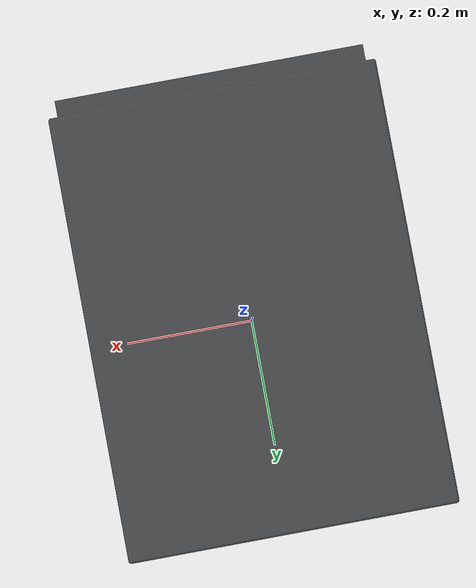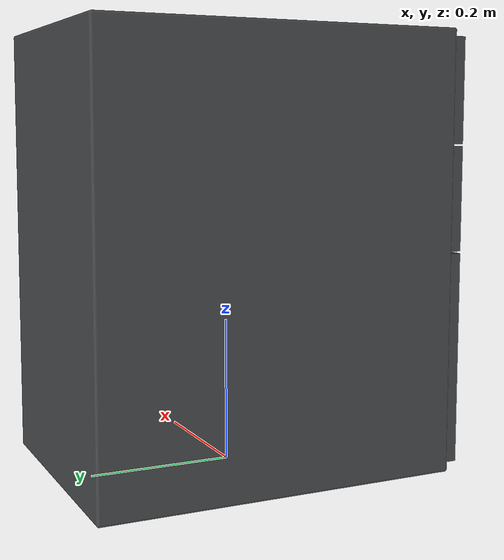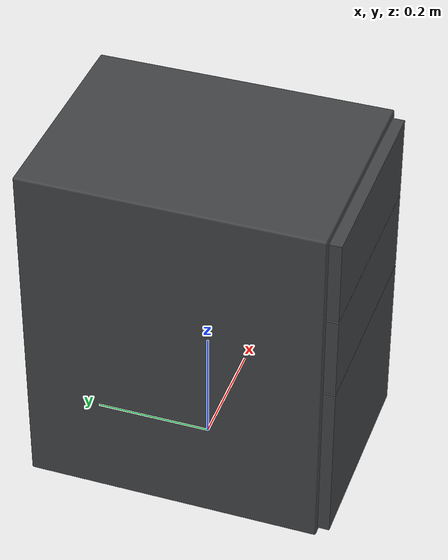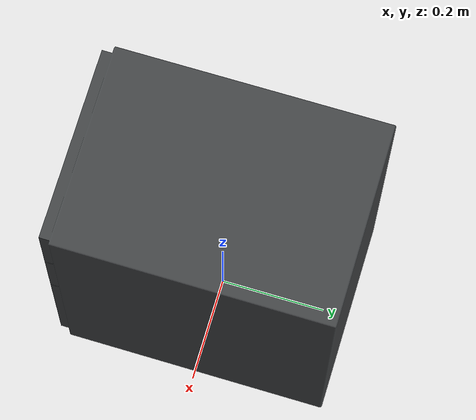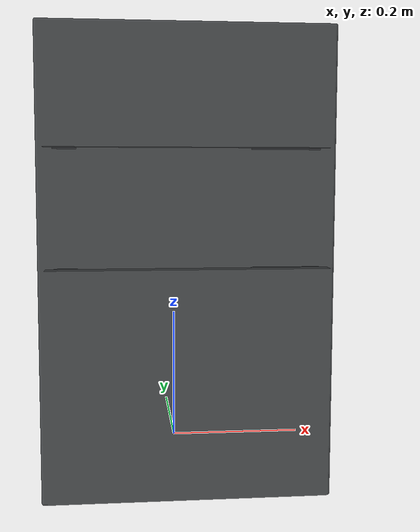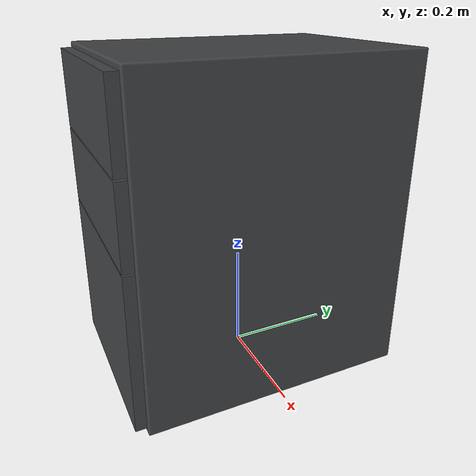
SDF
<?xml version='1.0' ?>
<sdf version='1.6'>
  <model name='office_desk_cabinet'>
    <static>false</static>
    <link name='link'>
      <collision name='collision'>
        <geometry>
          <mesh>
            <uri>model://volta_simulation/models/office_desk_cabinet/meshes/office_desk_cabinet.dae</uri>
          </mesh>
        </geometry>
        <surface>
          <friction>
            <ode>
              <mu>100</mu>
              <mu2>50</mu2>
            </ode>
          </friction>
        </surface>
      </collision>
      <visual name='visual'>
        <geometry>
          <mesh>
            <uri>model://volta_simulation/models/office_desk_cabinet/meshes/office_desk_cabinet.dae</uri>
          </mesh>
        </geometry>
        <material>
          <script>
            <uri>model://volta_simulation/models/office_desk_cabinet/materials/scripts</uri>
            <uri>model://volta_simulation/models/office_desk_cabinet/materials/textures</uri>
            <name>office_desk_cabinet</name>
          </script>
        </material>
      </visual>
      <inertial>
        <pose>-0 -0.01 0.3 0 0 0</pose>
        <mass>15.78</mass>
        <inertia>
          <ixx>2.62 </ixx>
          <iyy>2.40 </iyy>
          <izz>0.82</izz>
          <ixy>0</ixy>
          <ixz>0 </ixz>
          <iyz>-0.03</iyz>
        </inertia>
      </inertial>
    </link>
  </model>
</sdf>
